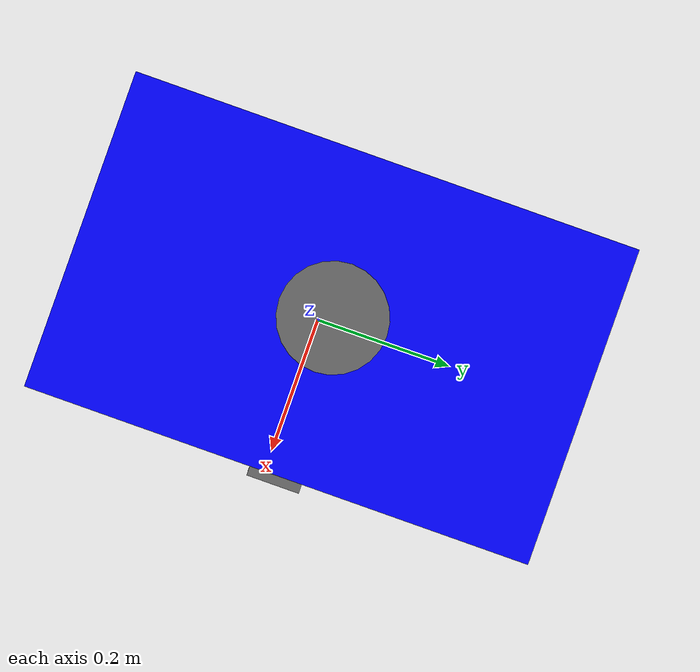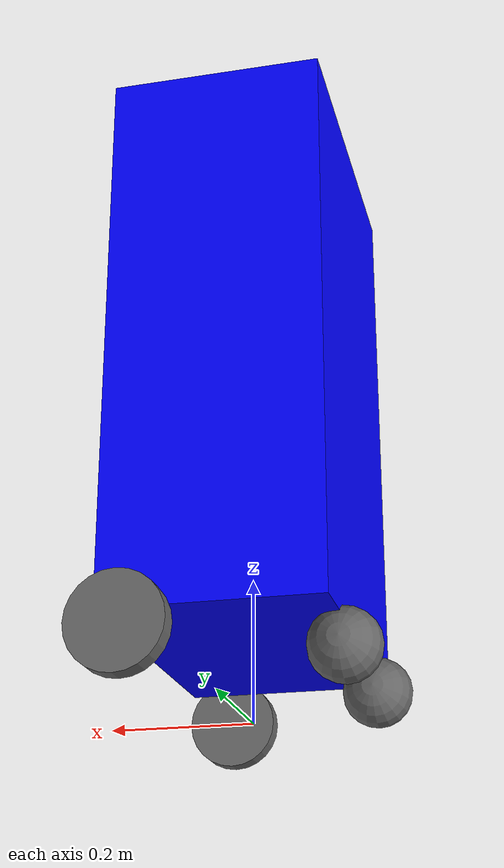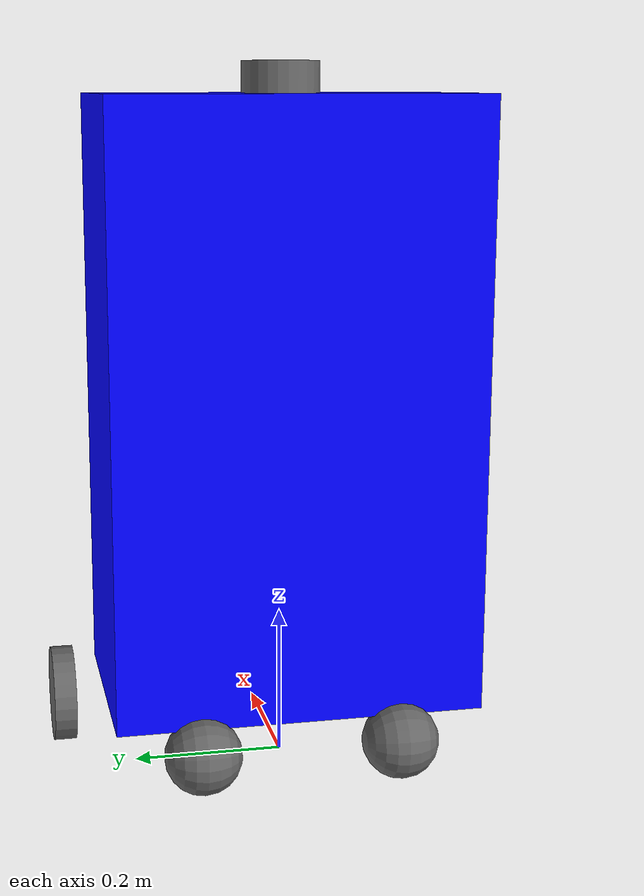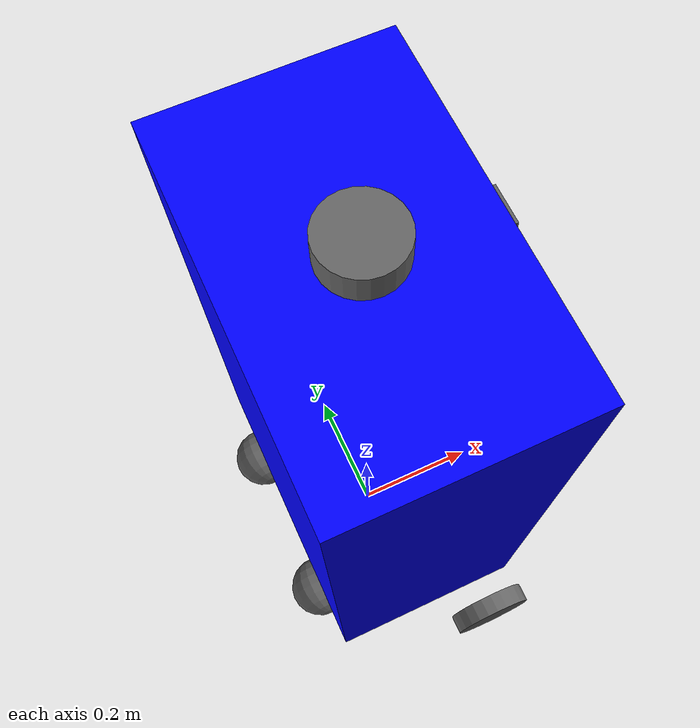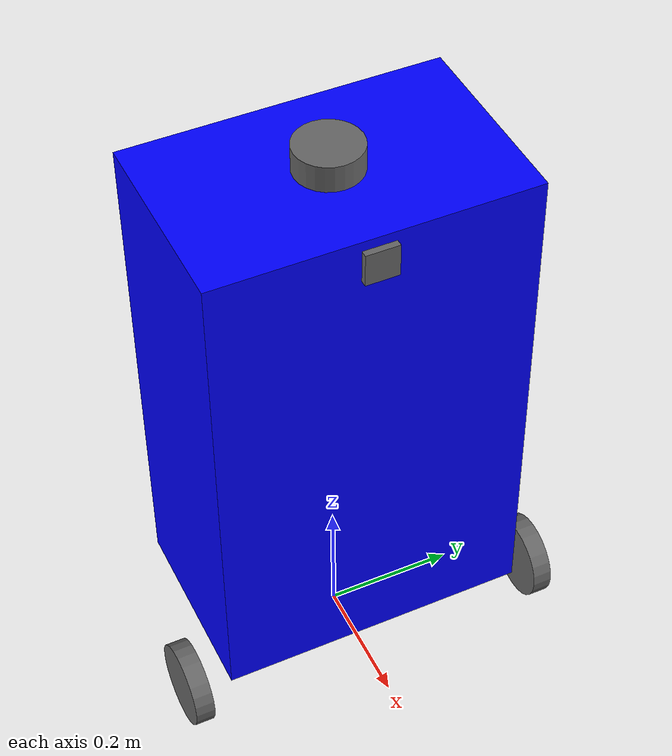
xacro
<?xml version="1.0"?>
<robot name="robot_lab" xmlns:xacro="http://ros.org/wiki/xacro">

<!-- Parametros Globales -->

  <xacro:property name="package_name" value="robot_description"/>
  <xacro:property name="PI" value="3.14159265"/>

  <xacro:arg name="base_color" default="0.0 0.0 1.0 1.0"/>

  <material name="gray">
    <color rgba="0.4 0.4 0.4 1.0"/>
  </material>

 <!-- Parametros del Robot -->

  <xacro:property name="body_length" value="0.48"/>
  <xacro:property name="body_width" value="0.30"/>
  <xacro:property name="body_height" value="0.79"/>
  <xacro:property name="base_elevation" value="0.10"/>
  <xacro:property name="wheel_separation" value="0.26"/>
  <xacro:property name="wheel_separation_y" value="${body_length/2+0.05}"/>
  <xacro:property name="wheel_diameter" value="0.13"/>
  <xacro:property name="wheel_radius" value="${wheel_diameter/2}"/>
  <xacro:property name="caster_wheel_radius" value="${base_elevation/2}"/>
  <xacro:property name="wheel_thickness" value="0.03"/>
  <xacro:property name="wheel_z_offset" value="-0.035"/>

   <!-- Base Footprint (distancia desde el suelo hasta el piso) -->

  <link name="base_footprint"/>

  <!-- Base footprint to Base Link (cuerpo del robot (prisma rectangular de 0.79x0.30x0.48 )) -->

  <joint name="base_joint" type="fixed">
    <parent link="base_footprint"/>
    <child link="base_link"/>
    <origin xyz="0 0 ${base_elevation}" rpy="0 0 0"/>
  </joint>

  <link name="base_link">
    <visual>
      <origin xyz="0 0 ${body_height/2}" rpy="0 0 0"/>
      <geometry>
        <box size="${body_width} ${body_length} ${body_height}"/>
      </geometry>
      <material name="base_color">
        <color rgba="$(arg base_color)"/>
      </material>
    </visual>
    <collision>
      <origin xyz="0 0 ${body_height/2}" rpy="0 0 0"/>
      <geometry>
        <box size="${body_width} ${body_length} ${body_height}"/>
      </geometry>
    </collision>
    <inertial>
      <origin xyz="0 0 ${body_height/2}" rpy="0 0 0"/>
      <mass value="12.0"/>
      <inertia ixx="0.714" ixy="0.0" ixz="0.0" iyy="0.854" iyz="0.0" izz="0.320" />
    </inertial>
  </link>

<!-- /////////////////////////////////// RUEDAS CON MOTOR //////////////////////////////////////// -->

<!-- Base Link to wheel_left_link (Union de la rueda izquierda con el cuerpo )) -->

  <joint name="wheel_left_joint" type="continuous">
    <parent link="base_link"/>
    <child link="wheel_left_link"/>
    <origin xyz="0.10 ${wheel_separation_y} ${wheel_z_offset}" rpy="${-PI/2} 0 0"/>
    <axis xyz="0 0 1"/>
    <limit effort="50" velocity="10"/>
  </joint>

  <link name="wheel_left_link">
    <visual>
      <geometry>
        <cylinder length="${wheel_thickness}" radius="${wheel_radius}"/>
      </geometry>
      <material name="gray"/>
    </visual>
    <collision>
      <geometry>
        <cylinder length="${wheel_thickness}" radius="${wheel_radius}"/>
      </geometry>
    </collision>
    <inertial>
      <mass value="0.5" />
      <inertia ixx="0.00024" ixy="0.0" ixz="0.0" iyy="0.00024" iyz="0.0" izz="0.00042" />
    </inertial>
  </link>

  <!-- Base Link to wheel_right_link (Union de la rueda derecha con el cuerpo )) -->

  <joint name="wheel_right_joint" type="continuous">
    <parent link="base_link"/>
    <child link="wheel_right_link"/>
    <origin xyz="0.10 ${-(wheel_separation_y)} ${wheel_z_offset}" rpy="${-PI/2} 0 0"/>
    <axis xyz="0 0 1"/>
    <limit effort="50" velocity="10"/>
  </joint>

  <link name="wheel_right_link">
    <visual>
      <geometry>
        <cylinder length="${wheel_thickness}" radius="${wheel_radius}"/>
      </geometry>
      <material name="gray"/>
    </visual>
    <collision>
      <geometry>
        <cylinder length="${wheel_thickness}" radius="${wheel_radius}"/>
      </geometry>
    </collision>
    <inertial>
      <mass value="0.5" />
      <inertia ixx="0.00024" ixy="0.0" ixz="0.0" iyy="0.00024" iyz="0.0" izz="0.00042" />
    </inertial>
  </link>

<!-- ////////////////////////////////////////////////RUEDAS LOCAS //////////////////////////////////////////////////////////////////////////////////////////-->

<!-- Base Link to caster_left_joint (Union de la rueda loca izquiERDA con el cuerpo )) -->

  <joint name="caster_left_joint" type="continuous">
    <parent link="base_link"/>
    <child link="caster_left_link"/>
    <origin xyz="${-body_width/2} ${wheel_separation/2} ${wheel_z_offset}" rpy="${-PI/2} 0 0"/>
    <axis xyz="0 0 1"/>
  </joint>

  <link name="caster_left_link">
    <visual>
      <geometry>
        <sphere radius="${caster_wheel_radius}"/>
      </geometry>
      <material name="gray"/>
    </visual>
    <collision>
      <geometry>
        <sphere radius="${wheel_radius}"/>
      </geometry>
    </collision>
    <inertial>
      <mass value="0.5" />
      <inertia ixx="0.00024" ixy="0.0" ixz="0.0" iyy="0.00024" iyz="0.0" izz="0.00042" />
    </inertial>
  </link>

<!-- Base Link to caster_right_joint (Union de la rueda loca derecha con el cuerpo )) -->

  <joint name="caster_right_joint" type="continuous">
    <parent link="base_link"/>
    <child link="caster_right_link"/>
    <origin xyz="${-body_width/2} ${-wheel_separation/2} ${wheel_z_offset}" rpy="${-PI/2} 0 0"/>
    <axis xyz="0 0 1"/>
  </joint>

  <link name="caster_right_link">
    <visual>
      <geometry>
        <sphere radius="${caster_wheel_radius}"/>
      </geometry>
      <material name="gray"/>
    </visual>
    <collision>
      <geometry>
        <sphere radius="${wheel_radius}"/>
      </geometry>
    </collision>
    <inertial>
      <mass value="0.5" />
      <inertia ixx="0.00024" ixy="0.0" ixz="0.0" iyy="0.00024" iyz="0.0" izz="0.00042" />
    </inertial>
  </link>

<!-- /////////////////////////////////////////////// LIDAR //////////////////////////////////////////////////////////////////////////////// -->

  <joint name="lidar_joint" type="fixed">
    <parent link="base_link"/>
    <child link="lidar_link"/>
    <origin xyz="0 0 0.81" rpy="0 0 0"/>
  </joint>

  <link name="lidar_link">
    <visual>
      <geometry>
        <cylinder length="0.04" radius="0.05"/>
      </geometry>
      <material name="gray"/>
    </visual>
  </link>

  <gazebo reference="lidar_link">
    <sensor name="lidar_sensor" type="gpu_lidar">
      <always_on>true</always_on>
      <update_rate>10</update_rate>
      <topic>scan</topic>
      <lidar>
        <scan>
          <horizontal>
            <samples>360</samples>
            <resolution>1</resolution>
            <min_angle>-3.14159</min_angle>
            <max_angle>3.14159</max_angle>
          </horizontal>
        </scan>
        <range>
          <min>0.15</min>
          <max>10.0</max>
          <resolution>0.01</resolution>
        </range>
      </lidar>
    </sensor>
  </gazebo>

<!-- /////////////////////////////////////////////// CAMARA //////////////////////////////////////////////////////////////////////////////// -->

  <joint name="camera_joint" type="fixed">
    <parent link="base_link"/>
    <child link="camera_link"/>
    <origin xyz="${body_width/2} 0 0.75" rpy="0 0 0"/>
  </joint>

  <link name="camera_link">
    <visual>
      <geometry>
        <box size="0.02 0.05 0.05"/>
      </geometry>
      <material name="gray"/>
    </visual>
  </link>

  <gazebo reference="camera_link">
    <sensor name="camera_sensor" type="camera">
      <camera>
        <horizontal_fov>1.047</horizontal_fov>
        <image>
          <width>640</width>
          <height>480</height>
        </image>
        <clip>
          <near>0.1</near>
          <far>100</far>
        </clip>
      </camera>
      <always_on>true</always_on>
      <update_rate>30</update_rate>
      <topic>camera/image_raw</topic>
    </sensor>
  </gazebo>
<!-- /////////////////////////////////////////////// ODOMETRIA //////////////////////////////////////////////////////////////////////////////// -->
  <gazebo>
    <plugin
      filename="ignition-gazebo-diff-drive-system"
      name="ignition::gazebo::systems::DiffDrive">
      <left_joint>wheel_left_joint</left_joint>
      <right_joint>wheel_right_joint</right_joint>
      <wheel_separation>${wheel_separation_y}</wheel_separation>
      <wheel_radius>${wheel_radius}</wheel_radius>
      <odom_publish_frequency>20</odom_publish_frequency>
      <max_linear_acceleration>0.5</max_linear_acceleration>
      <min_linear_acceleration>-0.5</min_linear_acceleration>
      <max_angular_acceleration>1</max_angular_acceleration>
      <min_angular_acceleration>-1</min_angular_acceleration>
      <max_linear_velocity>0.5</max_linear_velocity>
      <min_linear_velocity>-0.3</min_linear_velocity>
      <max_angular_velocity>1</max_angular_velocity>
      <min_angular_velocity>-1</min_angular_velocity>
    </plugin>

    <plugin
      filename="gz-sim-joint-state-publisher-system"
      name="gz::sim::systems::JointStatePublisher">
    </plugin>
  </gazebo>

</robot>
